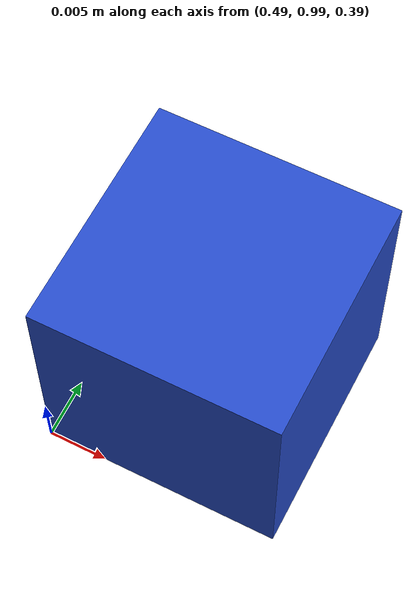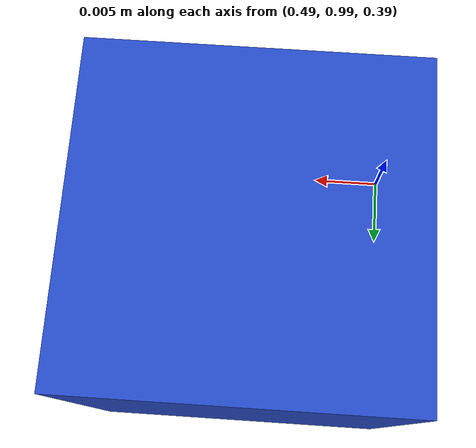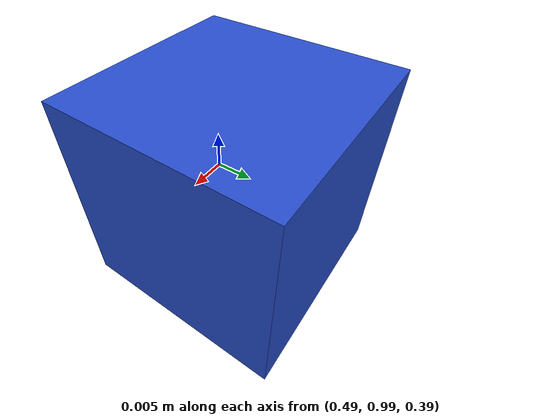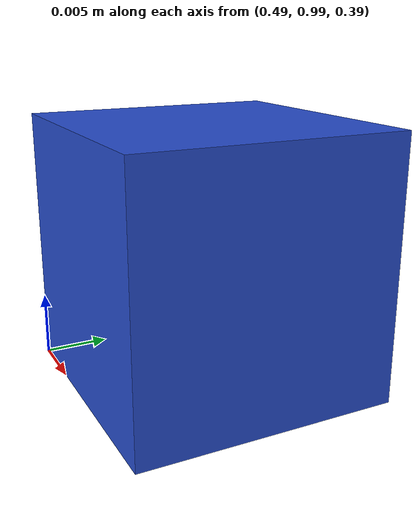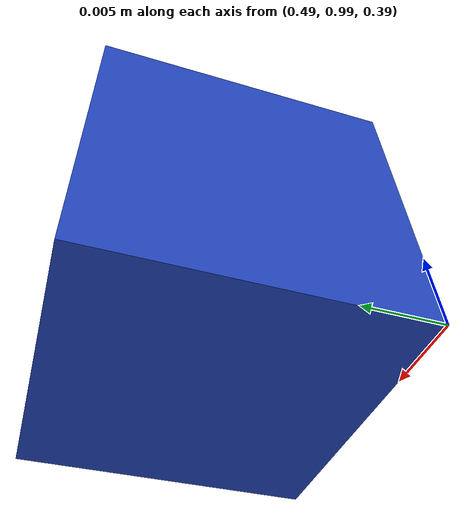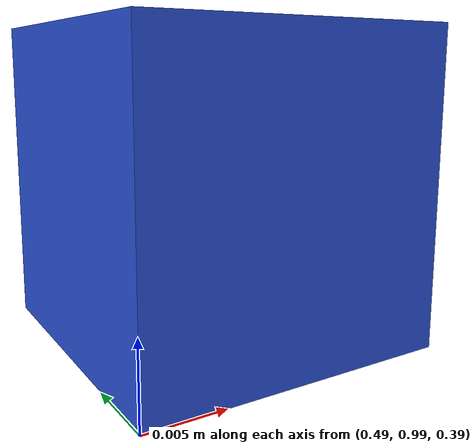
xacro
<?xml version="1.0"?>
<robot xmlns:xacro="http://www.ros.org/wiki/xacro" name="camera">

  <!-- Import Rviz colors -->
  <xacro:include filename="$(find open_manipulator_description)/urdf/materials.xacro" />

    <!--Gazebo Camera Plugin-->
   <gazebo reference="camera">
    <sensor type="camera" name="camera">
      <update_rate>30.0</update_rate>
      <camera name="head">
        <horizontal_fov>1.3962634</horizontal_fov>
        <image>
          <width>800</width>
          <height>800</height>
          <format>R8G8B8</format>
        </image>
        <clip>
          <near>0.02</near>
          <far>300</far>
        </clip>
        <noise>
          <type>gaussian</type>
          <!-- Noise is sampled independently per pixel on each frame.
               That pixel's noise value is added to each of its color
               channels, which at that point lie in the range [0,1]. -->
          <mean>0.0</mean>
          <stddev>0.007</stddev>
        </noise>
      </camera>
      <plugin name="camera_controller" filename="libgazebo_ros_camera.so">
        <alwaysOn>true</alwaysOn>
        <updateRate>0.0</updateRate>
        <cameraName>/camera</cameraName>
        <imageTopicName>image_raw</imageTopicName>
        <cameraInfoTopicName>camera_info</cameraInfoTopicName>
        <frameName>camera</frameName>
        <hackBaseline>0.07</hackBaseline>
        <distortionK1>0.0</distortionK1>
        <distortionK2>0.0</distortionK2>
        <distortionK3>0.0</distortionK3>
        <distortionT1>0.0</distortionT1>
        <distortionT2>0.0</distortionT2>
      </plugin>
    </sensor>
  </gazebo>

  <xacro:property name="camera_size" value="0.02"/>
  <xacro:property name="camera_origin_x" value="0.5"/>
  <xacro:property name="camera_origin_y" value="1.0"/>
  <xacro:property name="camera_origin_z" value="0.4"/>

  <xacro:macro name="default_inertial" params="mass">
    <inertial>
      <mass value="${mass}"/>
      <inertia ixx="1.0" ixy="0.0" ixz="0.0" iyy="1.0" iyz="0.0" izz="1.0"/>
    </inertial>
  </xacro:macro>

  <!-- World -->
  <link name="world"/>

  <!--Camera-->
  <link name="camera">
    <visual>
      <geometry>
        <box size="${camera_size} ${camera_size} ${camera_size}"/>
      </geometry>
      <material name="blue"/>
    </visual>
    <collision>
      <geometry>
        <box size="${camera_size} ${camera_size} ${camera_size}"/>
      </geometry>
    </collision>
    <xacro:default_inertial mass="0.02"/>
  </link>

  <joint name="camera_joint" type="fixed">
    <origin xyz="${camera_origin_x} ${camera_origin_y} ${camera_origin_z}" rpy="0 0 ${-pi/2} "/>
    <parent link="world"/>
    <child link="camera"/>
  </joint>

</robot>
